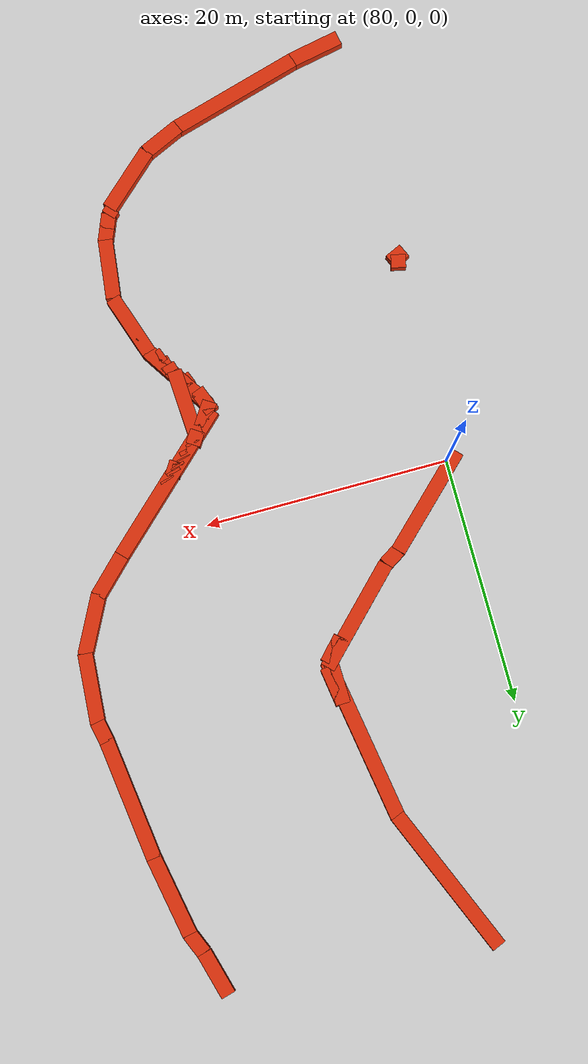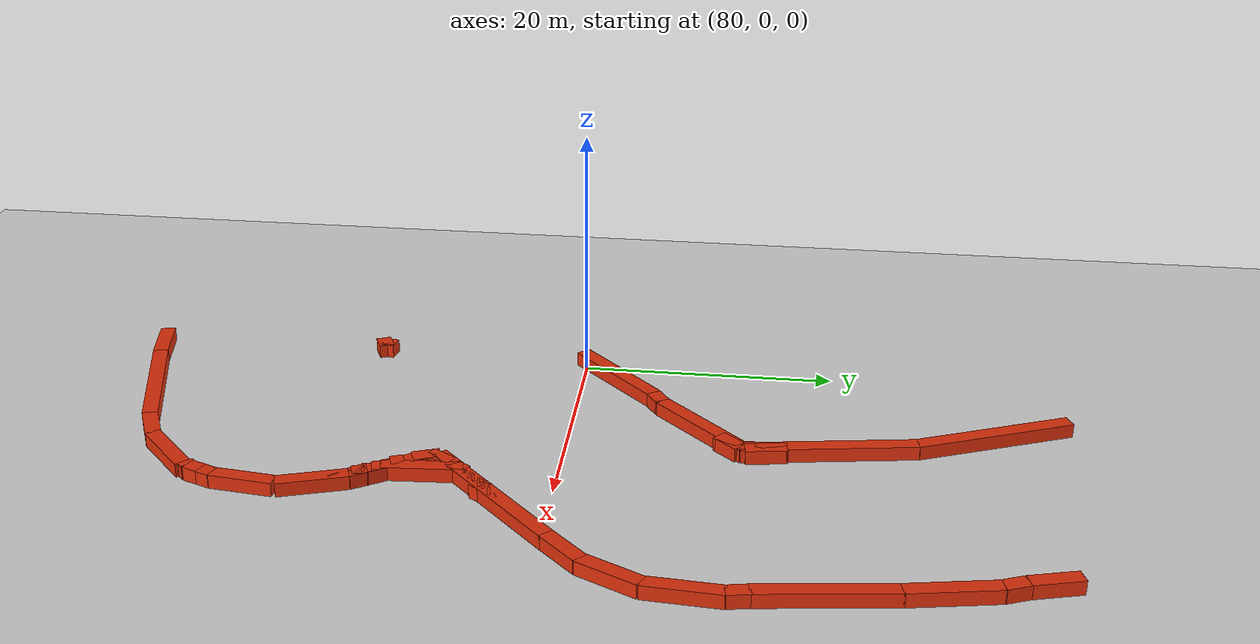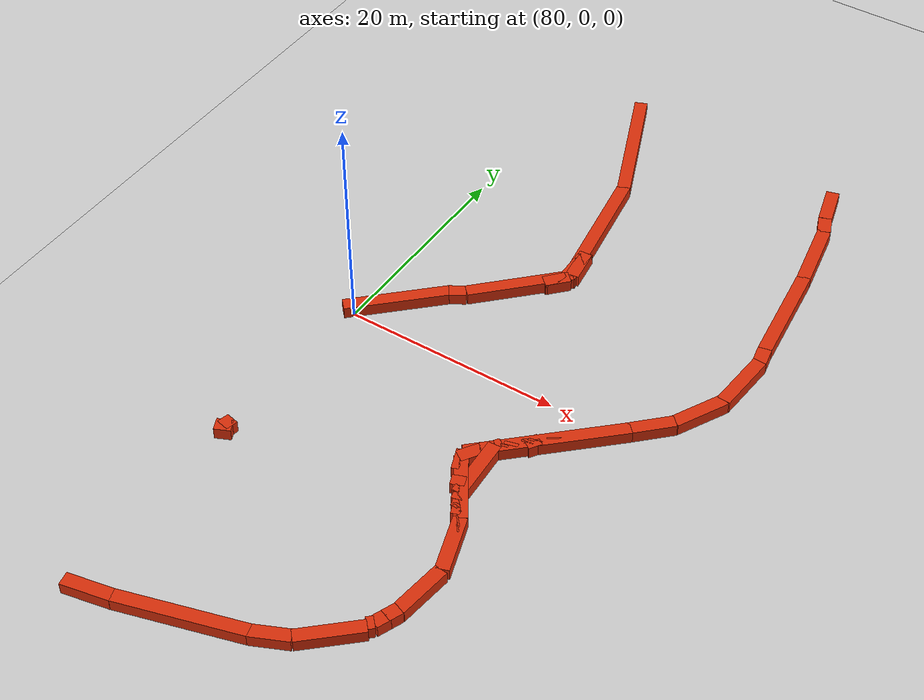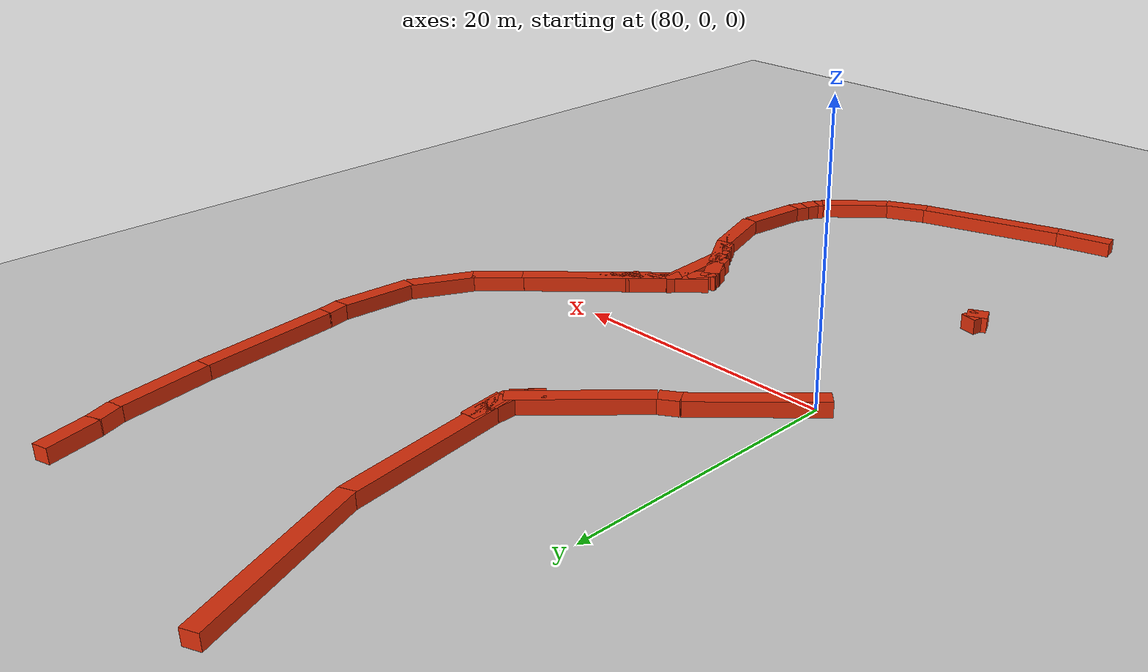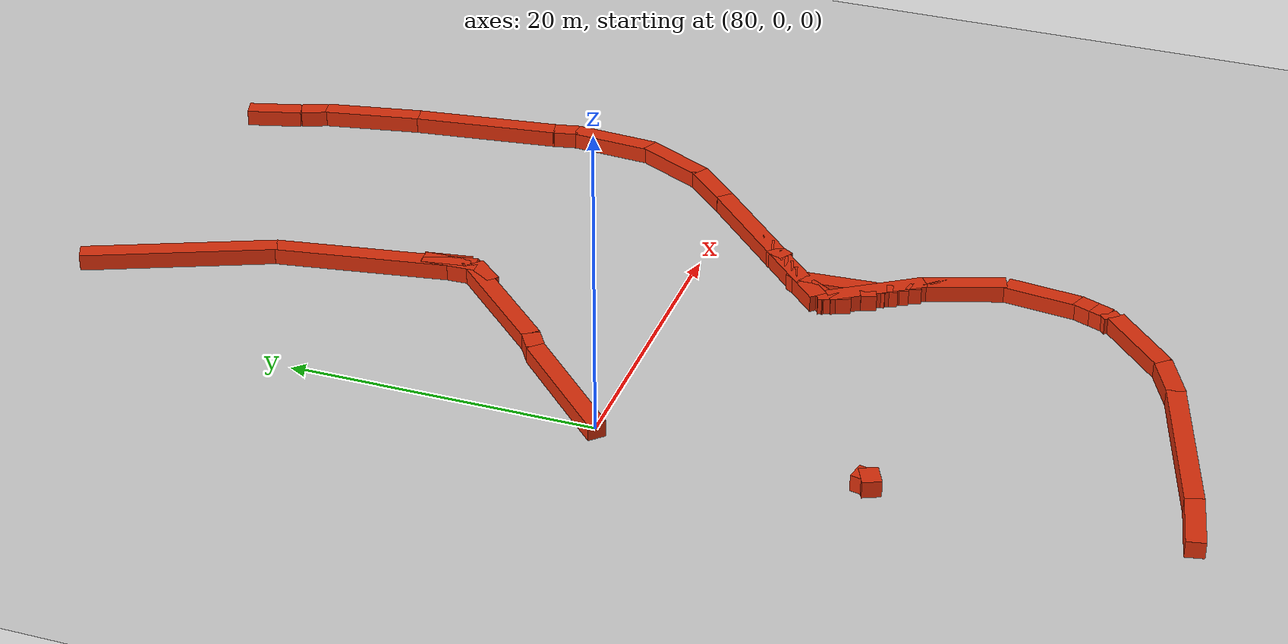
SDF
<sdf version="1.6">
 <world name="default">
  <include><uri>model://ground_plane</uri></include>
  <model name="track_inner_guardrail">
   <static>true</static>
   <link name="seg_064">
    <pose>79.37 -17.13 0.55 0 0 0.4241</pose>
    <collision name="col"><geometry><box><size>1.45 1.20 1.1</size></box></geometry></collision>
    <visual name="vis">
     <geometry><box><size>1.45 1.20 1.1</size></box></geometry>
     <material>
      <ambient>0.35 0.08 0.02 1</ambient>
      <diffuse>0.85 0.18 0.04 1</diffuse>
      <specular>0.2 0.2 0.2 1</specular>
     </material>
    </visual>
   </link>
   <link name="seg_067">
    <pose>79.42 -16.71 0.55 0 0 -1.7864</pose>
    <collision name="col"><geometry><box><size>1.09 1.20 1.1</size></box></geometry></collision>
    <visual name="vis">
     <geometry><box><size>1.09 1.20 1.1</size></box></geometry>
     <material>
      <ambient>0.35 0.08 0.02 1</ambient>
      <diffuse>0.85 0.18 0.04 1</diffuse>
      <specular>0.2 0.2 0.2 1</specular>
     </material>
    </visual>
   </link>
   <link name="seg_075">
    <pose>82.44 2.84 0.55 0 0 0.7689</pose>
    <collision name="col"><geometry><box><size>9.32 1.20 1.1</size></box></geometry></collision>
    <visual name="vis">
     <geometry><box><size>9.32 1.20 1.1</size></box></geometry>
     <material>
      <ambient>0.35 0.08 0.02 1</ambient>
      <diffuse>0.85 0.18 0.04 1</diffuse>
      <specular>0.2 0.2 0.2 1</specular>
     </material>
    </visual>
   </link>
   <link name="seg_076">
    <pose>86.39 6.44 0.55 0 0 0.5611</pose>
    <collision name="col"><geometry><box><size>1.51 1.20 1.1</size></box></geometry></collision>
    <visual name="vis">
     <geometry><box><size>1.51 1.20 1.1</size></box></geometry>
     <material>
      <ambient>0.35 0.08 0.02 1</ambient>
      <diffuse>0.85 0.18 0.04 1</diffuse>
      <specular>0.2 0.2 0.2 1</specular>
     </material>
    </visual>
   </link>
   <link name="seg_077">
    <pose>90.37 10.21 0.55 0 0 0.7905</pose>
    <collision name="col"><geometry><box><size>9.49 1.20 1.1</size></box></geometry></collision>
    <visual name="vis">
     <geometry><box><size>9.49 1.20 1.1</size></box></geometry>
     <material>
      <ambient>0.35 0.08 0.02 1</ambient>
      <diffuse>0.85 0.18 0.04 1</diffuse>
      <specular>0.2 0.2 0.2 1</specular>
     </material>
    </visual>
   </link>
   <link name="seg_078">
    <pose>93.49 15.10 0.55 0 0 1.7155</pose>
    <collision name="col"><geometry><box><size>3.18 1.20 1.1</size></box></geometry></collision>
    <visual name="vis">
     <geometry><box><size>3.18 1.20 1.1</size></box></geometry>
     <material>
      <ambient>0.35 0.08 0.02 1</ambient>
      <diffuse>0.85 0.18 0.04 1</diffuse>
      <specular>0.2 0.2 0.2 1</specular>
     </material>
    </visual>
   </link>
   <link name="seg_079">
    <pose>93.32 14.82 0.55 0 0 -1.5441</pose>
    <collision name="col"><geometry><box><size>3.71 1.20 1.1</size></box></geometry></collision>
    <visual name="vis">
     <geometry><box><size>3.71 1.20 1.1</size></box></geometry>
     <material>
      <ambient>0.35 0.08 0.02 1</ambient>
      <diffuse>0.85 0.18 0.04 1</diffuse>
      <specular>0.2 0.2 0.2 1</specular>
     </material>
    </visual>
   </link>
   <link name="seg_080">
    <pose>92.73 12.30 0.55 0 0 -2.2919</pose>
    <collision name="col"><geometry><box><size>2.05 1.20 1.1</size></box></geometry></collision>
    <visual name="vis">
     <geometry><box><size>2.05 1.20 1.1</size></box></geometry>
     <material>
      <ambient>0.35 0.08 0.02 1</ambient>
      <diffuse>0.85 0.18 0.04 1</diffuse>
      <specular>0.2 0.2 0.2 1</specular>
     </material>
    </visual>
   </link>
   <link name="seg_081">
    <pose>92.84 12.38 0.55 0 0 0.8189</pose>
    <collision name="col"><geometry><box><size>2.33 1.20 1.1</size></box></geometry></collision>
    <visual name="vis">
     <geometry><box><size>2.33 1.20 1.1</size></box></geometry>
     <material>
      <ambient>0.35 0.08 0.02 1</ambient>
      <diffuse>0.85 0.18 0.04 1</diffuse>
      <specular>0.2 0.2 0.2 1</specular>
     </material>
    </visual>
   </link>
   <link name="seg_082">
    <pose>92.53 19.75 0.55 0 0 1.7312</pose>
    <collision name="col"><geometry><box><size>13.41 1.20 1.1</size></box></geometry></collision>
    <visual name="vis">
     <geometry><box><size>13.41 1.20 1.1</size></box></geometry>
     <material>
      <ambient>0.35 0.08 0.02 1</ambient>
      <diffuse>0.85 0.18 0.04 1</diffuse>
      <specular>0.2 0.2 0.2 1</specular>
     </material>
    </visual>
   </link>
   <link name="seg_083">
    <pose>89.01 32.16 0.55 0 0 1.9696</pose>
    <collision name="col"><geometry><box><size>12.81 1.20 1.1</size></box></geometry></collision>
    <visual name="vis">
     <geometry><box><size>12.81 1.20 1.1</size></box></geometry>
     <material>
      <ambient>0.35 0.08 0.02 1</ambient>
      <diffuse>0.85 0.18 0.04 1</diffuse>
      <specular>0.2 0.2 0.2 1</specular>
     </material>
    </visual>
   </link>
  </model>
  <model name="track_outer_guardrail">
   <static>true</static>
   <link name="seg_030">
    <pose>81.22 -35.71 0.55 0 0 0.1962</pose>
    <collision name="col"><geometry><box><size>4.27 1.20 1.1</size></box></geometry></collision>
    <visual name="vis">
     <geometry><box><size>4.27 1.20 1.1</size></box></geometry>
     <material>
      <ambient>0.35 0.08 0.02 1</ambient>
      <diffuse>0.85 0.18 0.04 1</diffuse>
      <specular>0.2 0.2 0.2 1</specular>
     </material>
    </visual>
   </link>
   <link name="seg_031">
    <pose>88.58 -33.79 0.55 0 0 0.2765</pose>
    <collision name="col"><geometry><box><size>11.08 1.20 1.1</size></box></geometry></collision>
    <visual name="vis">
     <geometry><box><size>11.08 1.20 1.1</size></box></geometry>
     <material>
      <ambient>0.35 0.08 0.02 1</ambient>
      <diffuse>0.85 0.18 0.04 1</diffuse>
      <specular>0.2 0.2 0.2 1</specular>
     </material>
    </visual>
   </link>
   <link name="seg_032">
    <pose>95.34 -31.63 0.55 0 0 0.4251</pose>
    <collision name="col"><geometry><box><size>3.37 1.20 1.1</size></box></geometry></collision>
    <visual name="vis">
     <geometry><box><size>3.37 1.20 1.1</size></box></geometry>
     <material>
      <ambient>0.35 0.08 0.02 1</ambient>
      <diffuse>0.85 0.18 0.04 1</diffuse>
      <specular>0.2 0.2 0.2 1</specular>
     </material>
    </visual>
   </link>
   <link name="seg_033">
    <pose>98.88 -29.08 0.55 0 0 0.7427</pose>
    <collision name="col"><geometry><box><size>5.61 1.20 1.1</size></box></geometry></collision>
    <visual name="vis">
     <geometry><box><size>5.61 1.20 1.1</size></box></geometry>
     <material>
      <ambient>0.35 0.08 0.02 1</ambient>
      <diffuse>0.85 0.18 0.04 1</diffuse>
      <specular>0.2 0.2 0.2 1</specular>
     </material>
    </visual>
   </link>
   <link name="seg_034">
    <pose>100.96 -26.84 0.55 0 0 0.7427</pose>
    <collision name="col"><geometry><box><size>0.62 1.20 1.1</size></box></geometry></collision>
    <visual name="vis">
     <geometry><box><size>0.62 1.20 1.1</size></box></geometry>
     <material>
      <ambient>0.35 0.08 0.02 1</ambient>
      <diffuse>0.85 0.18 0.04 1</diffuse>
      <specular>0.2 0.2 0.2 1</specular>
     </material>
    </visual>
   </link>
   <link name="seg_035">
    <pose>101.35 -26.16 0.55 0 0 1.1877</pose>
    <collision name="col"><geometry><box><size>1.23 1.20 1.1</size></box></geometry></collision>
    <visual name="vis">
     <geometry><box><size>1.23 1.20 1.1</size></box></geometry>
     <material>
      <ambient>0.35 0.08 0.02 1</ambient>
      <diffuse>0.85 0.18 0.04 1</diffuse>
      <specular>0.2 0.2 0.2 1</specular>
     </material>
    </visual>
   </link>
   <link name="seg_036">
    <pose>101.76 -25.14 0.55 0 0 1.1877</pose>
    <collision name="col"><geometry><box><size>1.23 1.20 1.1</size></box></geometry></collision>
    <visual name="vis">
     <geometry><box><size>1.23 1.20 1.1</size></box></geometry>
     <material>
      <ambient>0.35 0.08 0.02 1</ambient>
      <diffuse>0.85 0.18 0.04 1</diffuse>
      <specular>0.2 0.2 0.2 1</specular>
     </material>
    </visual>
   </link>
   <link name="seg_037">
    <pose>102.25 -22.26 0.55 0 0 1.4509</pose>
    <collision name="col"><geometry><box><size>4.88 1.20 1.1</size></box></geometry></collision>
    <visual name="vis">
     <geometry><box><size>4.88 1.20 1.1</size></box></geometry>
     <material>
      <ambient>0.35 0.08 0.02 1</ambient>
      <diffuse>0.85 0.18 0.04 1</diffuse>
      <specular>0.2 0.2 0.2 1</specular>
     </material>
    </visual>
   </link>
   <link name="seg_038">
    <pose>101.74 -17.28 0.55 0 0 1.8933</pose>
    <collision name="col"><geometry><box><size>5.33 1.20 1.1</size></box></geometry></collision>
    <visual name="vis">
     <geometry><box><size>5.33 1.20 1.1</size></box></geometry>
     <material>
      <ambient>0.35 0.08 0.02 1</ambient>
      <diffuse>0.85 0.18 0.04 1</diffuse>
      <specular>0.2 0.2 0.2 1</specular>
     </material>
    </visual>
   </link>
   <link name="seg_039">
    <pose>99.16 -12.13 0.55 0 0 2.1502</pose>
    <collision name="col"><geometry><box><size>6.53 1.20 1.1</size></box></geometry></collision>
    <visual name="vis">
     <geometry><box><size>6.53 1.20 1.1</size></box></geometry>
     <material>
      <ambient>0.35 0.08 0.02 1</ambient>
      <diffuse>0.85 0.18 0.04 1</diffuse>
      <specular>0.2 0.2 0.2 1</specular>
     </material>
    </visual>
   </link>
   <link name="seg_040">
    <pose>97.79 -8.66 0.55 0 0 0.9959</pose>
    <collision name="col"><geometry><box><size>2.17 1.20 1.1</size></box></geometry></collision>
    <visual name="vis">
     <geometry><box><size>2.17 1.20 1.1</size></box></geometry>
     <material>
      <ambient>0.35 0.08 0.02 1</ambient>
      <diffuse>0.85 0.18 0.04 1</diffuse>
      <specular>0.2 0.2 0.2 1</specular>
     </material>
    </visual>
   </link>
   <link name="seg_041">
    <pose>99.09 -7.02 0.55 0 0 0.9959</pose>
    <collision name="col"><geometry><box><size>1.21 1.20 1.1</size></box></geometry></collision>
    <visual name="vis">
     <geometry><box><size>1.21 1.20 1.1</size></box></geometry>
     <material>
      <ambient>0.35 0.08 0.02 1</ambient>
      <diffuse>0.85 0.18 0.04 1</diffuse>
      <specular>0.2 0.2 0.2 1</specular>
     </material>
    </visual>
   </link>
   <link name="seg_042">
    <pose>101.35 -5.01 0.55 0 0 0.9959</pose>
    <collision name="col"><geometry><box><size>1.21 1.20 1.1</size></box></geometry></collision>
    <visual name="vis">
     <geometry><box><size>1.21 1.20 1.1</size></box></geometry>
     <material>
      <ambient>0.35 0.08 0.02 1</ambient>
      <diffuse>0.85 0.18 0.04 1</diffuse>
      <specular>0.2 0.2 0.2 1</specular>
     </material>
    </visual>
   </link>
   <link name="seg_043">
    <pose>102.60 -3.74 0.55 0 0 2.1870</pose>
    <collision name="col"><geometry><box><size>0.13 1.20 1.1</size></box></geometry></collision>
    <visual name="vis">
     <geometry><box><size>0.13 1.20 1.1</size></box></geometry>
     <material>
      <ambient>0.35 0.08 0.02 1</ambient>
      <diffuse>0.85 0.18 0.04 1</diffuse>
      <specular>0.2 0.2 0.2 1</specular>
     </material>
    </visual>
   </link>
   <link name="seg_044">
    <pose>102.12 -4.28 0.55 0 0 -1.3290</pose>
    <collision name="col"><geometry><box><size>0.22 1.20 1.1</size></box></geometry></collision>
    <visual name="vis">
     <geometry><box><size>0.22 1.20 1.1</size></box></geometry>
     <material>
      <ambient>0.35 0.08 0.02 1</ambient>
      <diffuse>0.85 0.18 0.04 1</diffuse>
      <specular>0.2 0.2 0.2 1</specular>
     </material>
    </visual>
   </link>
   <link name="seg_045">
    <pose>101.49 -4.80 0.55 0 0 -1.3290</pose>
    <collision name="col"><geometry><box><size>0.22 1.20 1.1</size></box></geometry></collision>
    <visual name="vis">
     <geometry><box><size>0.22 1.20 1.1</size></box></geometry>
     <material>
      <ambient>0.35 0.08 0.02 1</ambient>
      <diffuse>0.85 0.18 0.04 1</diffuse>
      <specular>0.2 0.2 0.2 1</specular>
     </material>
    </visual>
   </link>
   <link name="seg_046">
    <pose>101.08 -5.21 0.55 0 0 -1.3290</pose>
    <collision name="col"><geometry><box><size>0.22 1.20 1.1</size></box></geometry></collision>
    <visual name="vis">
     <geometry><box><size>0.22 1.20 1.1</size></box></geometry>
     <material>
      <ambient>0.35 0.08 0.02 1</ambient>
      <diffuse>0.85 0.18 0.04 1</diffuse>
      <specular>0.2 0.2 0.2 1</specular>
     </material>
    </visual>
   </link>
   <link name="seg_047">
    <pose>100.45 -5.73 0.55 0 0 -1.3290</pose>
    <collision name="col"><geometry><box><size>0.22 1.20 1.1</size></box></geometry></collision>
    <visual name="vis">
     <geometry><box><size>0.22 1.20 1.1</size></box></geometry>
     <material>
      <ambient>0.35 0.08 0.02 1</ambient>
      <diffuse>0.85 0.18 0.04 1</diffuse>
      <specular>0.2 0.2 0.2 1</specular>
     </material>
    </visual>
   </link>
   <link name="seg_048">
    <pose>100.05 -6.15 0.55 0 0 -1.3290</pose>
    <collision name="col"><geometry><box><size>0.34 1.20 1.1</size></box></geometry></collision>
    <visual name="vis">
     <geometry><box><size>0.34 1.20 1.1</size></box></geometry>
     <material>
      <ambient>0.35 0.08 0.02 1</ambient>
      <diffuse>0.85 0.18 0.04 1</diffuse>
      <specular>0.2 0.2 0.2 1</specular>
     </material>
    </visual>
   </link>
   <link name="seg_049">
    <pose>99.41 -6.67 0.55 0 0 -1.3290</pose>
    <collision name="col"><geometry><box><size>0.22 1.20 1.1</size></box></geometry></collision>
    <visual name="vis">
     <geometry><box><size>0.22 1.20 1.1</size></box></geometry>
     <material>
      <ambient>0.35 0.08 0.02 1</ambient>
      <diffuse>0.85 0.18 0.04 1</diffuse>
      <specular>0.2 0.2 0.2 1</specular>
     </material>
    </visual>
   </link>
   <link name="seg_050">
    <pose>99.15 -9.83 0.55 0 0 -1.5118</pose>
    <collision name="col"><geometry><box><size>5.83 1.20 1.1</size></box></geometry></collision>
    <visual name="vis">
     <geometry><box><size>5.83 1.20 1.1</size></box></geometry>
     <material>
      <ambient>0.35 0.08 0.02 1</ambient>
      <diffuse>0.85 0.18 0.04 1</diffuse>
      <specular>0.2 0.2 0.2 1</specular>
     </material>
    </visual>
   </link>
   <link name="seg_051">
    <pose>99.64 -13.03 0.55 0 0 -1.3007</pose>
    <collision name="col"><geometry><box><size>0.69 1.20 1.1</size></box></geometry></collision>
    <visual name="vis">
     <geometry><box><size>0.69 1.20 1.1</size></box></geometry>
     <material>
      <ambient>0.35 0.08 0.02 1</ambient>
      <diffuse>0.85 0.18 0.04 1</diffuse>
      <specular>0.2 0.2 0.2 1</specular>
     </material>
    </visual>
   </link>
   <link name="seg_052">
    <pose>100.03 -13.65 0.55 0 0 -1.3007</pose>
    <collision name="col"><geometry><box><size>0.69 1.20 1.1</size></box></geometry></collision>
    <visual name="vis">
     <geometry><box><size>0.69 1.20 1.1</size></box></geometry>
     <material>
      <ambient>0.35 0.08 0.02 1</ambient>
      <diffuse>0.85 0.18 0.04 1</diffuse>
      <specular>0.2 0.2 0.2 1</specular>
     </material>
    </visual>
   </link>
   <link name="seg_053">
    <pose>100.32 -14.11 0.55 0 0 -1.7533</pose>
    <collision name="col"><geometry><box><size>0.24 1.20 1.1</size></box></geometry></collision>
    <visual name="vis">
     <geometry><box><size>0.24 1.20 1.1</size></box></geometry>
     <material>
      <ambient>0.35 0.08 0.02 1</ambient>
      <diffuse>0.85 0.18 0.04 1</diffuse>
      <specular>0.2 0.2 0.2 1</specular>
     </material>
    </visual>
   </link>
   <link name="seg_054">
    <pose>101.19 -15.67 0.55 0 0 0.7329</pose>
    <collision name="col"><geometry><box><size>0.13 1.20 1.1</size></box></geometry></collision>
    <visual name="vis">
     <geometry><box><size>0.13 1.20 1.1</size></box></geometry>
     <material>
      <ambient>0.35 0.08 0.02 1</ambient>
      <diffuse>0.85 0.18 0.04 1</diffuse>
      <specular>0.2 0.2 0.2 1</specular>
     </material>
    </visual>
   </link>
   <link name="seg_055">
    <pose>100.96 -15.21 0.55 0 0 0.7329</pose>
    <collision name="col"><geometry><box><size>0.13 1.20 1.1</size></box></geometry></collision>
    <visual name="vis">
     <geometry><box><size>0.13 1.20 1.1</size></box></geometry>
     <material>
      <ambient>0.35 0.08 0.02 1</ambient>
      <diffuse>0.85 0.18 0.04 1</diffuse>
      <specular>0.2 0.2 0.2 1</specular>
     </material>
    </visual>
   </link>
   <link name="seg_056">
    <pose>100.35 -14.12 0.55 0 0 1.9402</pose>
    <collision name="col"><geometry><box><size>1.13 1.20 1.1</size></box></geometry></collision>
    <visual name="vis">
     <geometry><box><size>1.13 1.20 1.1</size></box></geometry>
     <material>
      <ambient>0.35 0.08 0.02 1</ambient>
      <diffuse>0.85 0.18 0.04 1</diffuse>
      <specular>0.2 0.2 0.2 1</specular>
     </material>
    </visual>
   </link>
   <link name="seg_057">
    <pose>98.64 -11.70 0.55 0 0 1.9402</pose>
    <collision name="col"><geometry><box><size>1.01 1.20 1.1</size></box></geometry></collision>
    <visual name="vis">
     <geometry><box><size>1.01 1.20 1.1</size></box></geometry>
     <material>
      <ambient>0.35 0.08 0.02 1</ambient>
      <diffuse>0.85 0.18 0.04 1</diffuse>
      <specular>0.2 0.2 0.2 1</specular>
     </material>
    </visual>
   </link>
   <link name="seg_058">
    <pose>97.59 -9.73 0.55 0 0 1.9402</pose>
    <collision name="col"><geometry><box><size>2.13 1.20 1.1</size></box></geometry></collision>
    <visual name="vis">
     <geometry><box><size>2.13 1.20 1.1</size></box></geometry>
     <material>
      <ambient>0.35 0.08 0.02 1</ambient>
      <diffuse>0.85 0.18 0.04 1</diffuse>
      <specular>0.2 0.2 0.2 1</specular>
     </material>
    </visual>
   </link>
   <link name="seg_059">
    <pose>102.20 -4.11 0.55 0 0 0.7566</pose>
    <collision name="col"><geometry><box><size>13.79 1.20 1.1</size></box></geometry></collision>
    <visual name="vis">
     <geometry><box><size>13.79 1.20 1.1</size></box></geometry>
     <material>
      <ambient>0.35 0.08 0.02 1</ambient>
      <diffuse>0.85 0.18 0.04 1</diffuse>
      <specular>0.2 0.2 0.2 1</specular>
     </material>
    </visual>
   </link>
   <link name="seg_060">
    <pose>108.49 1.90 0.55 0 0 0.7817</pose>
    <collision name="col"><geometry><box><size>3.84 1.20 1.1</size></box></geometry></collision>
    <visual name="vis">
     <geometry><box><size>3.84 1.20 1.1</size></box></geometry>
     <material>
      <ambient>0.35 0.08 0.02 1</ambient>
      <diffuse>0.85 0.18 0.04 1</diffuse>
      <specular>0.2 0.2 0.2 1</specular>
     </material>
    </visual>
   </link>
   <link name="seg_061">
    <pose>110.91 5.36 0.55 0 0 1.0968</pose>
    <collision name="col"><geometry><box><size>4.96 1.20 1.1</size></box></geometry></collision>
    <visual name="vis">
     <geometry><box><size>4.96 1.20 1.1</size></box></geometry>
     <material>
      <ambient>0.35 0.08 0.02 1</ambient>
      <diffuse>0.85 0.18 0.04 1</diffuse>
      <specular>0.2 0.2 0.2 1</specular>
     </material>
    </visual>
   </link>
   <link name="seg_062">
    <pose>112.22 10.26 0.55 0 0 1.4969</pose>
    <collision name="col"><geometry><box><size>5.64 1.20 1.1</size></box></geometry></collision>
    <visual name="vis">
     <geometry><box><size>5.64 1.20 1.1</size></box></geometry>
     <material>
      <ambient>0.35 0.08 0.02 1</ambient>
      <diffuse>0.85 0.18 0.04 1</diffuse>
      <specular>0.2 0.2 0.2 1</specular>
     </material>
    </visual>
   </link>
   <link name="seg_063">
    <pose>112.26 13.80 0.55 0 0 1.7720</pose>
    <collision name="col"><geometry><box><size>1.72 1.20 1.1</size></box></geometry></collision>
    <visual name="vis">
     <geometry><box><size>1.72 1.20 1.1</size></box></geometry>
     <material>
      <ambient>0.35 0.08 0.02 1</ambient>
      <diffuse>0.85 0.18 0.04 1</diffuse>
      <specular>0.2 0.2 0.2 1</specular>
     </material>
    </visual>
   </link>
   <link name="seg_064">
    <pose>111.47 19.47 0.55 0 0 1.6990</pose>
    <collision name="col"><geometry><box><size>9.99 1.20 1.1</size></box></geometry></collision>
    <visual name="vis">
     <geometry><box><size>9.99 1.20 1.1</size></box></geometry>
     <material>
      <ambient>0.35 0.08 0.02 1</ambient>
      <diffuse>0.85 0.18 0.04 1</diffuse>
      <specular>0.2 0.2 0.2 1</specular>
     </material>
    </visual>
   </link>
   <link name="seg_065">
    <pose>110.23 27.58 0.55 0 0 1.7576</pose>
    <collision name="col"><geometry><box><size>6.66 1.20 1.1</size></box></geometry></collision>
    <visual name="vis">
     <geometry><box><size>6.66 1.20 1.1</size></box></geometry>
     <material>
      <ambient>0.35 0.08 0.02 1</ambient>
      <diffuse>0.85 0.18 0.04 1</diffuse>
      <specular>0.2 0.2 0.2 1</specular>
     </material>
    </visual>
   </link>
   <link name="seg_066">
    <pose>109.27 31.65 0.55 0 0 1.9684</pose>
    <collision name="col"><geometry><box><size>1.86 1.20 1.1</size></box></geometry></collision>
    <visual name="vis">
     <geometry><box><size>1.86 1.20 1.1</size></box></geometry>
     <material>
      <ambient>0.35 0.08 0.02 1</ambient>
      <diffuse>0.85 0.18 0.04 1</diffuse>
      <specular>0.2 0.2 0.2 1</specular>
     </material>
    </visual>
   </link>
   <link name="seg_067">
    <pose>108.41 34.31 0.55 0 0 1.8395</pose>
    <collision name="col"><geometry><box><size>3.75 1.20 1.1</size></box></geometry></collision>
    <visual name="vis">
     <geometry><box><size>3.75 1.20 1.1</size></box></geometry>
     <material>
      <ambient>0.35 0.08 0.02 1</ambient>
      <diffuse>0.85 0.18 0.04 1</diffuse>
      <specular>0.2 0.2 0.2 1</specular>
     </material>
    </visual>
   </link>
  </model>
 </world>
</sdf>
